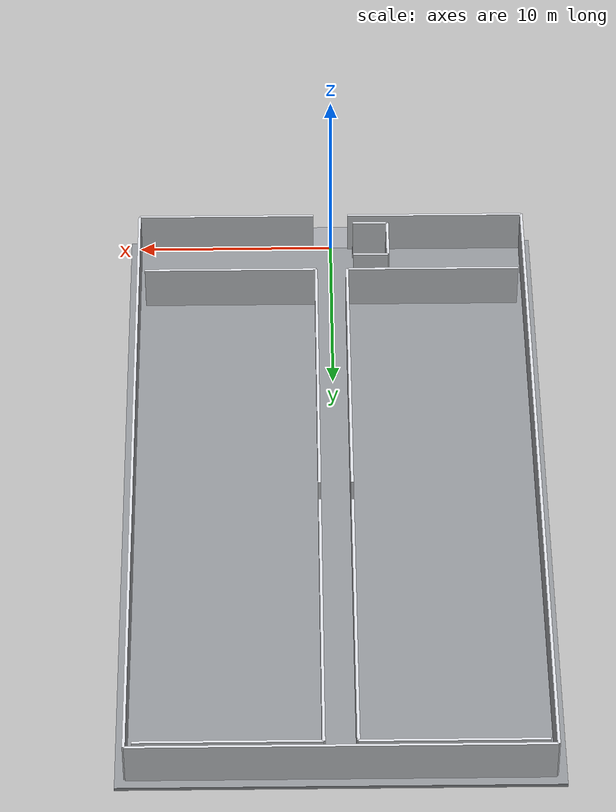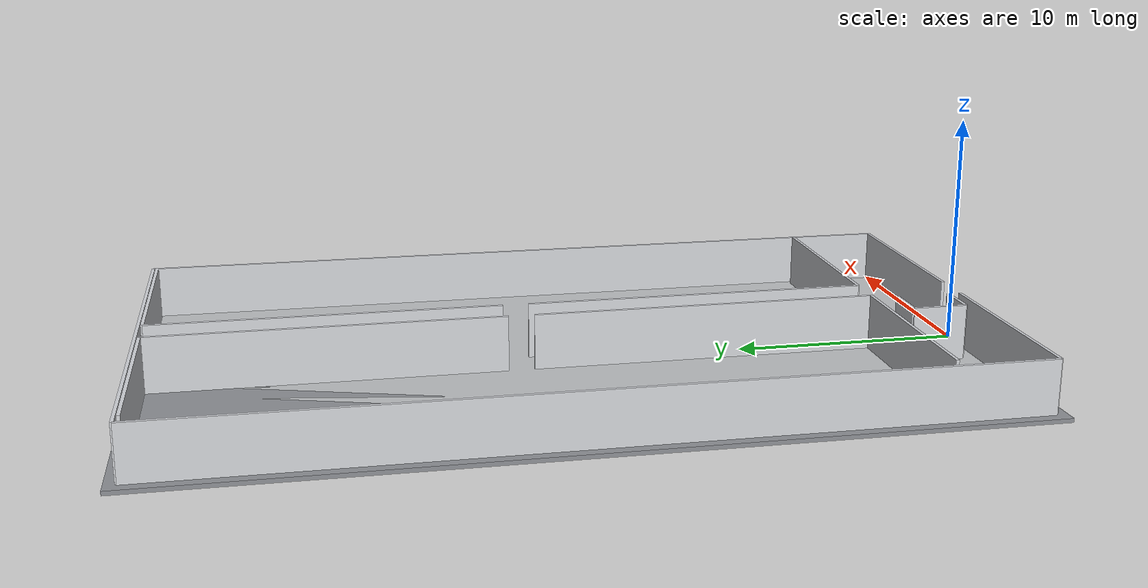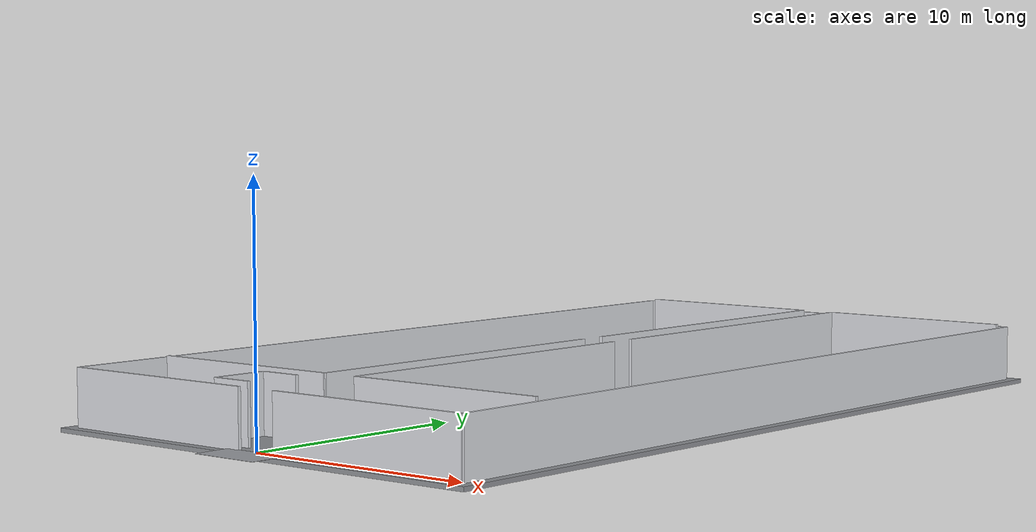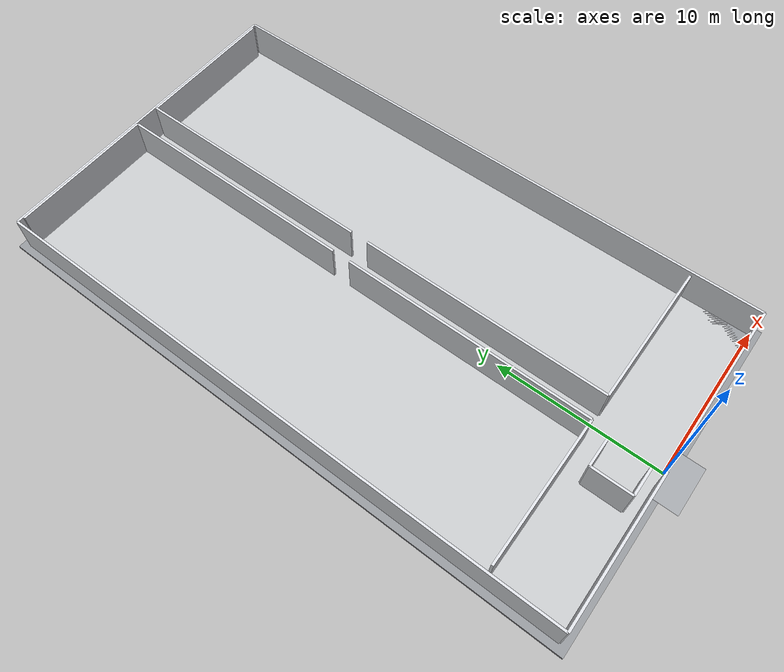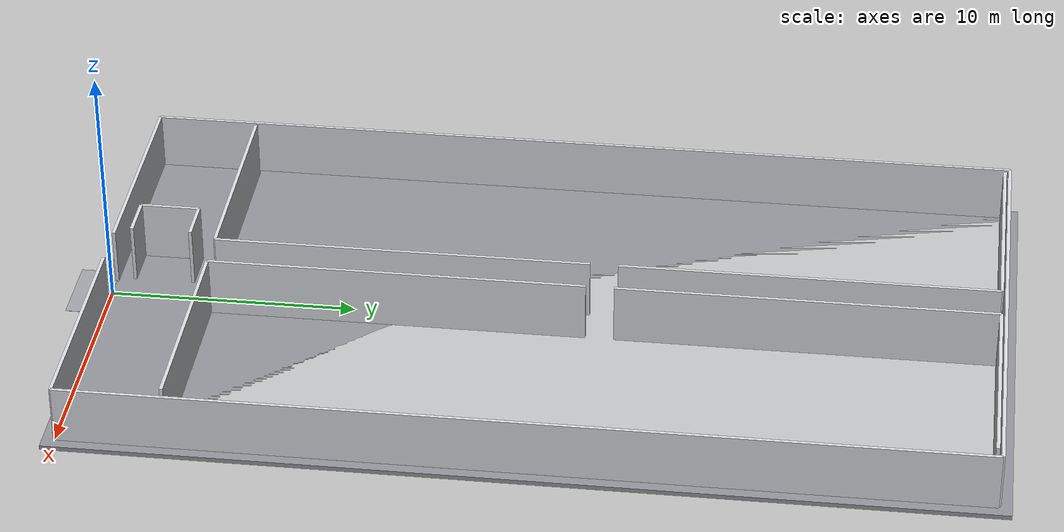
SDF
<?xml version="1.0" ?>
<sdf version="1.7">
  <model name="generated_lightweight_building">
    <static>true</static>
    <pose>0 0 0 0 0 0</pose>
    <link name="lightweight_foundation">
      <pose>0.0000 18.0000 -0.0900 0.0000 0.0000 0.0000</pose>
      <gravity>false</gravity>
      <collision name="lightweight_foundation_collision">
        <geometry>
          <box>
            <size>21.0000 37.0000 0.1800</size>
          </box>
        </geometry>
      </collision>
      <visual name="lightweight_foundation_visual">
        <geometry>
          <box>
            <size>21.0000 37.0000 0.1800</size>
          </box>
        </geometry>
        <material>
          <ambient>0.56 0.57 0.59 1</ambient>
          <diffuse>0.56 0.57 0.59 1</diffuse>
        </material>
      </visual>
    </link>
    <link name="lightweight_entrance_apron">
      <pose>0.0000 -0.8000 0.0300 0.0000 0.0000 0.0000</pose>
      <gravity>false</gravity>
      <collision name="lightweight_entrance_apron_collision">
        <geometry>
          <box>
            <size>3.0000 1.6000 0.0100</size>
          </box>
        </geometry>
      </collision>
      <visual name="lightweight_entrance_apron_visual">
        <geometry>
          <box>
            <size>3.0000 1.6000 0.0100</size>
          </box>
        </geometry>
        <material>
          <ambient>0.62 0.63 0.65 1</ambient>
          <diffuse>0.62 0.63 0.65 1</diffuse>
        </material>
      </visual>
    </link>
    <link name="lightweight_floor_plate_0">
      <pose>0.0000 18.0000 -0.0900 0.0000 0.0000 0.0000</pose>
      <gravity>false</gravity>
      <collision name="lightweight_floor_plate_0_collision">
        <geometry>
          <box>
            <size>20.0000 36.0000 0.1800</size>
          </box>
        </geometry>
      </collision>
      <visual name="lightweight_floor_plate_0_visual">
        <geometry>
          <box>
            <size>20.0000 36.0000 0.1800</size>
          </box>
        </geometry>
        <material>
          <ambient>0.75 0.76 0.77 1</ambient>
          <diffuse>0.75 0.76 0.77 1</diffuse>
        </material>
      </visual>
    </link>
    <link name="lightweight_west_wall_0">
      <pose>-10.0000 18.0000 1.1750 0.0000 0.0000 0.0000</pose>
      <gravity>false</gravity>
      <collision name="lightweight_west_wall_0_collision">
        <geometry>
          <box>
            <size>0.1400 36.0000 2.3500</size>
          </box>
        </geometry>
      </collision>
      <visual name="lightweight_west_wall_0_visual">
        <geometry>
          <box>
            <size>0.1400 36.0000 2.3500</size>
          </box>
        </geometry>
        <material>
          <ambient>0.84 0.85 0.87 1</ambient>
          <diffuse>0.84 0.85 0.87 1</diffuse>
        </material>
      </visual>
    </link>
    <link name="lightweight_east_wall_0">
      <pose>10.0000 18.0000 1.1750 0.0000 0.0000 0.0000</pose>
      <gravity>false</gravity>
      <collision name="lightweight_east_wall_0_collision">
        <geometry>
          <box>
            <size>0.1400 36.0000 2.3500</size>
          </box>
        </geometry>
      </collision>
      <visual name="lightweight_east_wall_0_visual">
        <geometry>
          <box>
            <size>0.1400 36.0000 2.3500</size>
          </box>
        </geometry>
        <material>
          <ambient>0.84 0.85 0.87 1</ambient>
          <diffuse>0.84 0.85 0.87 1</diffuse>
        </material>
      </visual>
    </link>
    <link name="lightweight_north_wall_0">
      <pose>0.0000 36.0000 1.1750 0.0000 0.0000 0.0000</pose>
      <gravity>false</gravity>
      <collision name="lightweight_north_wall_0_collision">
        <geometry>
          <box>
            <size>20.0000 0.1400 2.3500</size>
          </box>
        </geometry>
      </collision>
      <visual name="lightweight_north_wall_0_visual">
        <geometry>
          <box>
            <size>20.0000 0.1400 2.3500</size>
          </box>
        </geometry>
        <material>
          <ambient>0.84 0.85 0.87 1</ambient>
          <diffuse>0.84 0.85 0.87 1</diffuse>
        </material>
      </visual>
    </link>
    <link name="lightweight_south_wall_left_0">
      <pose>-5.4500 0.0000 1.1750 0.0000 0.0000 0.0000</pose>
      <gravity>false</gravity>
      <collision name="lightweight_south_wall_left_0_collision">
        <geometry>
          <box>
            <size>9.1000 0.1400 2.3500</size>
          </box>
        </geometry>
      </collision>
      <visual name="lightweight_south_wall_left_0_visual">
        <geometry>
          <box>
            <size>9.1000 0.1400 2.3500</size>
          </box>
        </geometry>
        <material>
          <ambient>0.84 0.85 0.87 1</ambient>
          <diffuse>0.84 0.85 0.87 1</diffuse>
        </material>
      </visual>
    </link>
    <link name="lightweight_south_wall_right_0">
      <pose>5.4500 0.0000 1.1750 0.0000 0.0000 0.0000</pose>
      <gravity>false</gravity>
      <collision name="lightweight_south_wall_right_0_collision">
        <geometry>
          <box>
            <size>9.1000 0.1400 2.3500</size>
          </box>
        </geometry>
      </collision>
      <visual name="lightweight_south_wall_right_0_visual">
        <geometry>
          <box>
            <size>9.1000 0.1400 2.3500</size>
          </box>
        </geometry>
        <material>
          <ambient>0.84 0.85 0.87 1</ambient>
          <diffuse>0.84 0.85 0.87 1</diffuse>
        </material>
      </visual>
    </link>
    <link name="lightweight_light_floor_0_room_0_corridor_wall_lower">
      <pose>-0.8000 11.8175 1.2250 0.0000 0.0000 0.0000</pose>
      <gravity>false</gravity>
      <collision name="lightweight_light_floor_0_room_0_corridor_wall_lower_collision">
        <geometry>
          <box>
            <size>0.1400 15.2350 2.4500</size>
          </box>
        </geometry>
      </collision>
      <visual name="lightweight_light_floor_0_room_0_corridor_wall_lower_visual">
        <geometry>
          <box>
            <size>0.1400 15.2350 2.4500</size>
          </box>
        </geometry>
        <material>
          <ambient>0.84 0.85 0.87 1</ambient>
          <diffuse>0.84 0.85 0.87 1</diffuse>
        </material>
      </visual>
    </link>
    <link name="lightweight_light_floor_0_room_0_corridor_wall_upper">
      <pose>-0.8000 28.1825 1.2250 0.0000 0.0000 0.0000</pose>
      <gravity>false</gravity>
      <collision name="lightweight_light_floor_0_room_0_corridor_wall_upper_collision">
        <geometry>
          <box>
            <size>0.1400 15.2350 2.4500</size>
          </box>
        </geometry>
      </collision>
      <visual name="lightweight_light_floor_0_room_0_corridor_wall_upper_visual">
        <geometry>
          <box>
            <size>0.1400 15.2350 2.4500</size>
          </box>
        </geometry>
        <material>
          <ambient>0.84 0.85 0.87 1</ambient>
          <diffuse>0.84 0.85 0.87 1</diffuse>
        </material>
      </visual>
    </link>
    <link name="lightweight_light_floor_0_room_0_south_wall">
      <pose>-5.2250 4.2000 1.2250 0.0000 0.0000 0.0000</pose>
      <gravity>false</gravity>
      <collision name="lightweight_light_floor_0_room_0_south_wall_collision">
        <geometry>
          <box>
            <size>8.8500 0.1400 2.4500</size>
          </box>
        </geometry>
      </collision>
      <visual name="lightweight_light_floor_0_room_0_south_wall_visual">
        <geometry>
          <box>
            <size>8.8500 0.1400 2.4500</size>
          </box>
        </geometry>
        <material>
          <ambient>0.84 0.85 0.87 1</ambient>
          <diffuse>0.84 0.85 0.87 1</diffuse>
        </material>
      </visual>
    </link>
    <link name="lightweight_light_floor_0_room_0_north_wall">
      <pose>-5.2250 35.8000 1.2250 0.0000 0.0000 0.0000</pose>
      <gravity>false</gravity>
      <collision name="lightweight_light_floor_0_room_0_north_wall_collision">
        <geometry>
          <box>
            <size>8.8500 0.1400 2.4500</size>
          </box>
        </geometry>
      </collision>
      <visual name="lightweight_light_floor_0_room_0_north_wall_visual">
        <geometry>
          <box>
            <size>8.8500 0.1400 2.4500</size>
          </box>
        </geometry>
        <material>
          <ambient>0.84 0.85 0.87 1</ambient>
          <diffuse>0.84 0.85 0.87 1</diffuse>
        </material>
      </visual>
    </link>
    <link name="lightweight_light_floor_0_room_1_corridor_wall_lower">
      <pose>0.8000 11.8175 1.2250 0.0000 0.0000 0.0000</pose>
      <gravity>false</gravity>
      <collision name="lightweight_light_floor_0_room_1_corridor_wall_lower_collision">
        <geometry>
          <box>
            <size>0.1400 15.2350 2.4500</size>
          </box>
        </geometry>
      </collision>
      <visual name="lightweight_light_floor_0_room_1_corridor_wall_lower_visual">
        <geometry>
          <box>
            <size>0.1400 15.2350 2.4500</size>
          </box>
        </geometry>
        <material>
          <ambient>0.84 0.85 0.87 1</ambient>
          <diffuse>0.84 0.85 0.87 1</diffuse>
        </material>
      </visual>
    </link>
    <link name="lightweight_light_floor_0_room_1_corridor_wall_upper">
      <pose>0.8000 28.1825 1.2250 0.0000 0.0000 0.0000</pose>
      <gravity>false</gravity>
      <collision name="lightweight_light_floor_0_room_1_corridor_wall_upper_collision">
        <geometry>
          <box>
            <size>0.1400 15.2350 2.4500</size>
          </box>
        </geometry>
      </collision>
      <visual name="lightweight_light_floor_0_room_1_corridor_wall_upper_visual">
        <geometry>
          <box>
            <size>0.1400 15.2350 2.4500</size>
          </box>
        </geometry>
        <material>
          <ambient>0.84 0.85 0.87 1</ambient>
          <diffuse>0.84 0.85 0.87 1</diffuse>
        </material>
      </visual>
    </link>
    <link name="lightweight_light_floor_0_room_1_south_wall">
      <pose>5.2250 4.2000 1.2250 0.0000 0.0000 0.0000</pose>
      <gravity>false</gravity>
      <collision name="lightweight_light_floor_0_room_1_south_wall_collision">
        <geometry>
          <box>
            <size>8.8500 0.1400 2.4500</size>
          </box>
        </geometry>
      </collision>
      <visual name="lightweight_light_floor_0_room_1_south_wall_visual">
        <geometry>
          <box>
            <size>8.8500 0.1400 2.4500</size>
          </box>
        </geometry>
        <material>
          <ambient>0.84 0.85 0.87 1</ambient>
          <diffuse>0.84 0.85 0.87 1</diffuse>
        </material>
      </visual>
    </link>
    <link name="lightweight_light_floor_0_room_1_north_wall">
      <pose>5.2250 35.8000 1.2250 0.0000 0.0000 0.0000</pose>
      <gravity>false</gravity>
      <collision name="lightweight_light_floor_0_room_1_north_wall_collision">
        <geometry>
          <box>
            <size>8.8500 0.1400 2.4500</size>
          </box>
        </geometry>
      </collision>
      <visual name="lightweight_light_floor_0_room_1_north_wall_visual">
        <geometry>
          <box>
            <size>8.8500 0.1400 2.4500</size>
          </box>
        </geometry>
        <material>
          <ambient>0.84 0.85 0.87 1</ambient>
          <diffuse>0.84 0.85 0.87 1</diffuse>
        </material>
      </visual>
    </link>
    <link name="lightweight_stair_core_west_0">
      <pose>-2.9500 1.9000 1.2250 0.0000 0.0000 0.0000</pose>
      <gravity>false</gravity>
      <collision name="lightweight_stair_core_west_0_collision">
        <geometry>
          <box>
            <size>0.1400 2.4000 2.4500</size>
          </box>
        </geometry>
      </collision>
      <visual name="lightweight_stair_core_west_0_visual">
        <geometry>
          <box>
            <size>0.1400 2.4000 2.4500</size>
          </box>
        </geometry>
        <material>
          <ambient>0.84 0.85 0.87 1</ambient>
          <diffuse>0.84 0.85 0.87 1</diffuse>
        </material>
      </visual>
    </link>
    <link name="lightweight_stair_core_south_0">
      <pose>-2.0500 0.7000 1.2250 0.0000 0.0000 0.0000</pose>
      <gravity>false</gravity>
      <collision name="lightweight_stair_core_south_0_collision">
        <geometry>
          <box>
            <size>1.8000 0.1400 2.4500</size>
          </box>
        </geometry>
      </collision>
      <visual name="lightweight_stair_core_south_0_visual">
        <geometry>
          <box>
            <size>1.8000 0.1400 2.4500</size>
          </box>
        </geometry>
        <material>
          <ambient>0.84 0.85 0.87 1</ambient>
          <diffuse>0.84 0.85 0.87 1</diffuse>
        </material>
      </visual>
    </link>
    <link name="lightweight_stair_core_north_0">
      <pose>-2.0500 3.1000 1.2250 0.0000 0.0000 0.0000</pose>
      <gravity>false</gravity>
      <collision name="lightweight_stair_core_north_0_collision">
        <geometry>
          <box>
            <size>1.8000 0.1400 2.4500</size>
          </box>
        </geometry>
      </collision>
      <visual name="lightweight_stair_core_north_0_visual">
        <geometry>
          <box>
            <size>1.8000 0.1400 2.4500</size>
          </box>
        </geometry>
        <material>
          <ambient>0.84 0.85 0.87 1</ambient>
          <diffuse>0.84 0.85 0.87 1</diffuse>
        </material>
      </visual>
    </link>
  </model>
</sdf>
